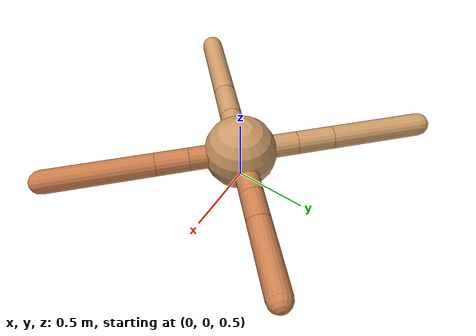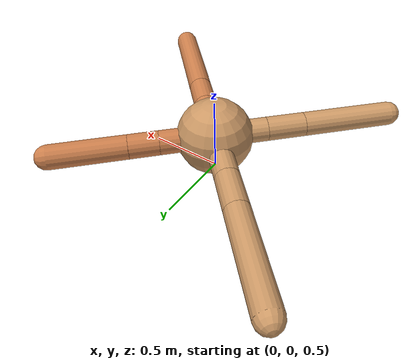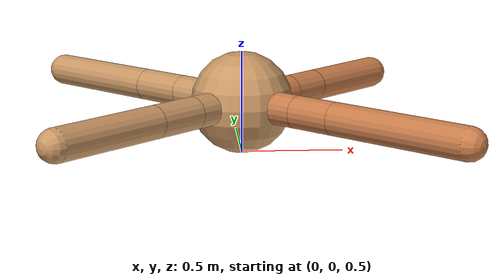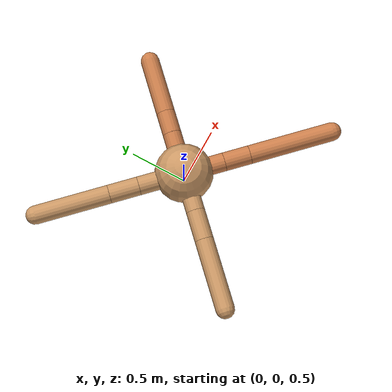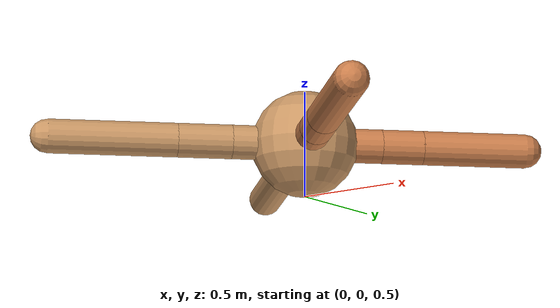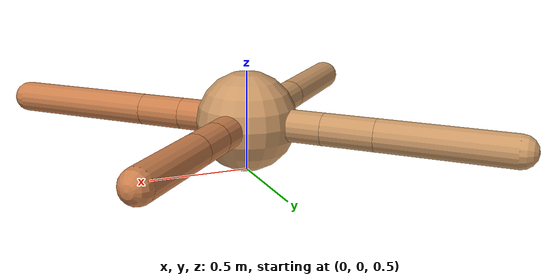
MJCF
<mujoco model="ant">
  <compiler angle="degree" coordinate="local" inertiafromgeom="true" />
  <option integrator="RK4" timestep="0.01" />
  <custom>
    <numeric data="0.0 0.0 0.55 1.0 0.0 0.0 0.0 0.0 1.0 0.0 -1.0 0.0 -1.0 0.0 1.0" name="init_qpos" />
  </custom>
  <default>
    <joint armature="1" damping="1" limited="true" />
    <geom conaffinity="0" condim="3" density="5.0" friction="1.5 0.1 0.1" margin="0.01" rgba="0.8 0.6 0.4 1" />
  </default>
  <worldbody>
    <body name="torso" pos="0 0 0.75">
      <geom name="torso_geom" pos="0 0 0" size="0.25" type="sphere" />

      <body name="front_left_leg" pos="0 0 0">
        <geom fromto="0.0 0.0 0.0 0.2553197315857602 0.2553197315857602 0.0" name="aux_1_geom" size="0.08" type="capsule" rgba=".8 .5 .3 1" />
        <body name="aux_1" pos="0.2553197315857602 0.2553197315857602 0.0">
          <joint axis="0 0 1" name="hip_1" pos="0.0 0.0 0.0" range="-40 40" type="hinge" />
          <geom fromto="0.0 0.0 0.0 0.13865340106994167 0.13865340106994167 0.0" name="left_leg_geom" size="0.08" type="capsule" rgba=".8 .5 .3 1" />
          <body pos="0.13865340106994167 0.13865340106994167 0.0" name="front_left_foot">
            <joint axis="-1 1 0" name="ankle_1" pos="0.0 0.0 0.0" range="30 100" type="hinge" />
            <geom fromto="0.0 0.0 0.0 0.3467275824901169 0.3467275824901169 0.0" name="left_ankle_geom" size="0.08" type="capsule" rgba=".8 .5 .3 1" />
          </body>
        </body>
      </body>
      <body name="front_right_leg" pos="0 0 0">
        <geom fromto="0.0 0.0 0.0 -0.2809585214927296 0.2809585214927296 0.0" name="aux_2_geom" size="0.08" type="capsule" />
        <body name="aux_2" pos="-0.2809585214927296 0.2809585214927296 0.0">
          <joint axis="0 0 1" name="hip_2" pos="0.0 0.0 0.0" range="-40 40" type="hinge" />
          <geom fromto="0.0 0.0 0.0 -0.1816055752918157 0.1816055752918157 0.0" name="right_leg_geom" size="0.08" type="capsule" />
          <body pos="-0.1816055752918157 0.1816055752918157 0.0" name="front_right_foot">
            <joint axis="1 1 0" name="ankle_2" pos="0.0 0.0 0.0" range="-100 -30" type="hinge" />
            <geom fromto="0.0 0.0 0.0 -0.45337435548147076 0.45337435548147076 0.0" name="right_ankle_geom" size="0.08" type="capsule" />
          </body>
        </body>
      </body>
      <body name="left_back_leg" pos="0 0 0">
        <geom fromto="0.0 0.0 0.0 -0.24383091768809542 -0.24383091768809542 0.0" name="aux_3_geom" size="0.08" type="capsule" />
        <body name="aux_3" pos="-0.24383091768809542 -0.24383091768809542 0.0">
          <joint axis="0 0 1" name="hip_3" pos="0.0 0.0 0.0" range="-40 40" type="hinge" />
          <geom fromto="0.0 0.0 0.0 -0.18082988442925374 -0.18082988442925374 0.0" name="back_leg_geom" size="0.08" type="capsule" />
          <body pos="-0.18082988442925374 -0.18082988442925374 0.0" name="left_back_foot">
            <joint axis="-1 1 0" name="ankle_3" pos="0.0 0.0 0.0" range="-100 -30" type="hinge" />
            <geom fromto="0.0 0.0 0.0 -0.427129944968981 -0.427129944968981 0.0" name="third_ankle_geom" size="0.08" type="capsule" />
          </body>
        </body>
      </body>
      <body name="right_back_leg" pos="0 0 0">
        <geom fromto="0.0 0.0 0.0 0.2492404919852736 -0.2492404919852736 0.0" name="aux_4_geom" size="0.08" type="capsule" rgba=".8 .5 .3 1" />
        <body name="aux_4" pos="0.2492404919852736 -0.2492404919852736 0.0">
          <joint axis="0 0 1" name="hip_4" pos="0.0 0.0 0.0" range="-40 40" type="hinge" />
          <geom fromto="0.0 0.0 0.0 0.15973076477028914 -0.15973076477028914 0.0" name="rightback_leg_geom" size="0.08" type="capsule" rgba=".8 .5 .3 1" />
          <body pos="0.15973076477028914 -0.15973076477028914 0.0" name="right_back_foot">
            <joint axis="1 1 0" name="ankle_4" pos="0.0 0.0 0.0" range="30 100" type="hinge" />
            <geom fromto="0.0 0.0 0.0 0.5186121030210161 -0.5186121030210161 0.0" name="fourth_ankle_geom" size="0.08" type="capsule" rgba=".8 .5 .3 1" />
          </body>
        </body>
      </body>
    </body>
  </worldbody>
  <actuator>
    <motor ctrllimited="true" ctrlrange="-1.0 1.0" joint="hip_4" gear="150" />
    <motor ctrllimited="true" ctrlrange="-1.0 1.0" joint="ankle_4" gear="150" />
    <motor ctrllimited="true" ctrlrange="-1.0 1.0" joint="hip_1" gear="150" />
    <motor ctrllimited="true" ctrlrange="-1.0 1.0" joint="ankle_1" gear="150" />
    <motor ctrllimited="true" ctrlrange="-1.0 1.0" joint="hip_2" gear="150" />
    <motor ctrllimited="true" ctrlrange="-1.0 1.0" joint="ankle_2" gear="150" />
    <motor ctrllimited="true" ctrlrange="-1.0 1.0" joint="hip_3" gear="150" />
    <motor ctrllimited="true" ctrlrange="-1.0 1.0" joint="ankle_3" gear="150" />
  </actuator>
</mujoco>
